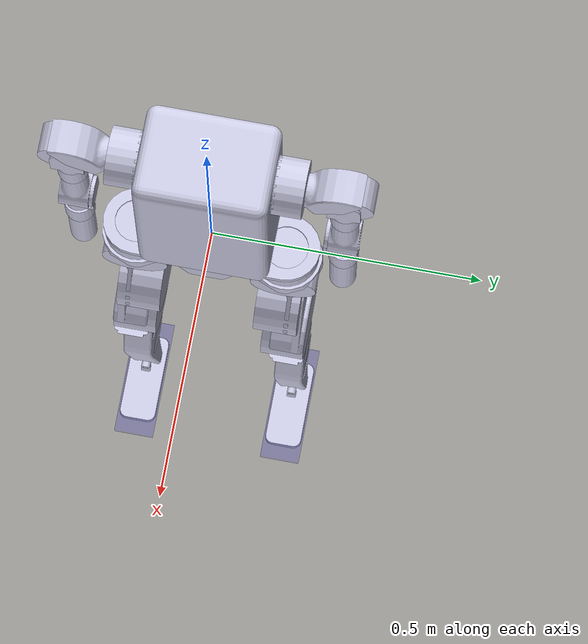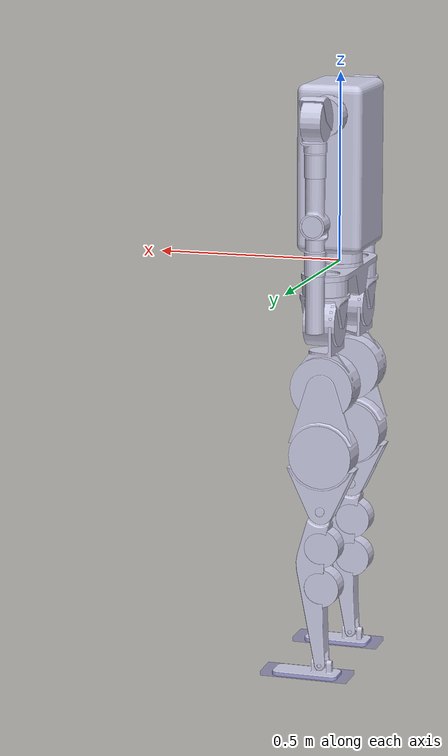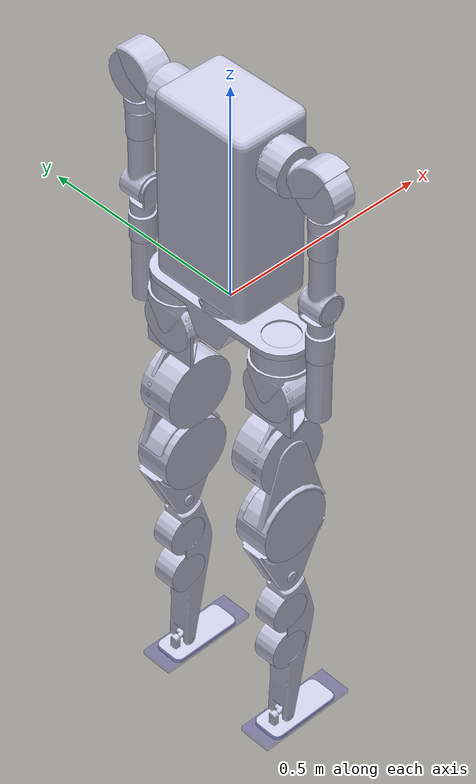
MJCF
<mujoco model="humanoid_yrp_merged">
  <compiler angle="radian" meshdir="meshes/"/>

  <asset>
    <mesh name="pelvis_link" file="pelvis_link.stl"/>
    <mesh name="left_hip_pitch_link" file="left_hip_pitch_link.stl"/>
    <mesh name="left_hip_roll_link" file="left_hip_roll_link.stl"/>
    <mesh name="left_hip_yaw_link" file="left_hip_yaw_link.stl"/>
    <mesh name="left_knee_pitch_link" file="left_knee_pitch_link.stl"/>
    <mesh name="left_ankle_pitch_link" file="left_ankle_pitch_link.stl"/>
    <mesh name="left_ankle_roll_link" file="left_ankle_roll_link.stl"/>
    <mesh name="right_hip_pitch_link" file="right_hip_pitch_link.stl"/>
    <mesh name="right_hip_roll_link" file="right_hip_roll_link.stl"/>
    <mesh name="right_hip_yaw_link" file="right_hip_yaw_link.stl"/>
    <mesh name="right_knee_pitch_link" file="right_knee_pitch_link.stl"/>
    <mesh name="right_ankle_pitch_link" file="right_ankle_pitch_link.stl"/>
    <mesh name="right_ankle_roll_link" file="right_ankle_roll_link.stl"/>
    <mesh name="torso_link" file="torso_link.stl"/>
    <mesh name="left_shoulder_pitch_link" file="left_shoulder_pitch_link.stl"/>
    <mesh name="left_shoulder_roll_link" file="left_shoulder_roll_link.stl"/>
    <mesh name="left_shoulder_yaw_link" file="left_shoulder_yaw_link.stl"/>
    <mesh name="left_elbow_pitch_link" file="left_elbow_pitch_link.stl"/>
    <mesh name="left_elbow_yaw_link" file="left_elbow_yaw_link.stl"/>
    <mesh name="right_shoulder_pitch_link" file="right_shoulder_pitch_link.stl"/>
    <mesh name="right_shoulder_roll_link" file="right_shoulder_roll_link.stl"/>
    <mesh name="right_shoulder_yaw_link" file="right_shoulder_yaw_link.stl"/>
    <mesh name="right_elbow_pitch_link" file="right_elbow_pitch_link.stl"/>
    <mesh name="right_elbow_yaw_link" file="right_elbow_yaw_link.stl"/>
  </asset>

  <worldbody>
    <body name="root">
      <inertial pos="-6.00373e-05 -8.36285e-05 -0.0261332" quat="0.707089 0.706905 -0.0124681 0.0124351" mass="6.82436" diaginertia="0.0756408 0.0753085 0.0146796"/>
      <joint name="floating_base_joint" type="free" limited="false" actuatorfrclimited="false"/>
      <geom type="mesh" contype="0" conaffinity="0" rgba="0.8 0.8 0.9 1" mesh="pelvis_link"/>
      <geom size="0.06 0.03205" pos="4.6014e-07 0.14 -0.0454909" type="cylinder" contype="0" conaffinity="0" rgba="0.8 0.8 0.9 1"/>
      <geom size="0.06 0.03205" pos="5.16968e-07 -0.14 -0.0454909" type="cylinder" contype="0" conaffinity="0" rgba="0.8 0.8 0.9 1"/>
      <geom size="0.06 0.03205" pos="5.16504e-07 -5.04132e-08 0.0250091" type="cylinder" contype="0" conaffinity="0" rgba="0.8 0.8 0.9 1"/>
      <site name="imu_mount" pos="0 0 0"/>
      <site name="torso_mount" pos="0 0 0.0475"/>
      <site name="imu_site" pos="0 0 0"/>
      <body name="left_hip_yaw_link" pos="0 0.14 -0.0635">
        <inertial pos="0 -2.31069e-06 -0.0626618" quat="1 -3.02664e-05 0 0" mass="2.78859" diaginertia="0.0064834 0.00620228 0.0048889"/>
        <joint name="left_hip_yaw_joint" pos="0 0 0" axis="0 0 1" range="-2.722 2.722" armature="0.061488" damping="0.0069" frictionloss="0.576"/>
        <geom type="mesh" contype="0" conaffinity="0" rgba="0.8 0.8 0.9 1" mesh="left_hip_yaw_link"/>
        <geom size="0.062 0.0425" pos="0 -2.95577e-06 -0.075" quat="0.70711 0 0.707103 0" type="cylinder" contype="0" conaffinity="0" rgba="0.8 0.8 0.9 1"/>
        <body name="left_hip_roll_link" pos="-0.027 0 -0.075">
          <inertial pos="0.0262551 -0.00642324 -0.167062" quat="0.704131 -0.0661226 -0.0416052 0.705759" mass="3.68168" diaginertia="0.016727 0.0125238 0.0086828"/>
          <joint name="left_hip_roll_joint" pos="0 0 0" axis="1 0 0" range="-0.5 1.047" armature="0.32256" damping="0.766" frictionloss="2.492"/>
          <geom type="mesh" contype="0" conaffinity="0" rgba="0.8 0.8 0.9 1" mesh="left_hip_roll_link"/>
          <geom size="0.085 0.0415" pos="0.0273992 -0.0085541 -0.175217" quat="0.70711 0.707103 0 0" type="cylinder" contype="0" conaffinity="0" rgba="0.8 0.8 0.9 1"/>
          <body name="left_hip_pitch_link" pos="0.0275 0.0228 -0.175">
            <inertial pos="-0.000160241 -0.0142881 -0.180496" quat="0.706764 -0.0149557 0.0149514 0.707133" mass="4.76011" diaginertia="0.0325838 0.0264769 0.0112813"/>
            <joint name="left_hip_pitch_joint" pos="0 0 0" axis="0 1 0" range="-3.1415 3.1415" armature="0.155952" damping="0.338" frictionloss="1.481"/>
            <geom type="mesh" contype="0" conaffinity="0" rgba="0.8 0.8 0.9 1" mesh="left_hip_pitch_link"/>
            <geom size="0.085 0.0415" pos="-0.000238364 -0.0184458 -0.179979" quat="0.70711 0.707103 0 0" type="cylinder" contype="0" conaffinity="0" rgba="0.8 0.8 0.9 1"/>
            <body name="left_knee_pitch_link" pos="0 -0.00999965 -0.33">
              <inertial pos="0.00791673 -3.48928e-07 -0.172865" quat="0.70701 -0.00277602 -0.0019518 0.707195" mass="3.05882" diaginertia="0.0384643 0.0371959 0.0031252"/>
              <joint name="left_knee_pitch_joint" pos="0 0 0" axis="0 1 0" range="0 2.007" armature="0.155952" damping="0.338" frictionloss="1.481"/>
              <geom type="mesh" contype="0" conaffinity="0" rgba="0.8 0.8 0.9 1" mesh="left_knee_pitch_link"/>
              <geom size="0.0525 0.027" pos="-0.00015591 0.0004457 -0.100101" quat="0.70711 0.707103 0 0" type="cylinder" contype="0" conaffinity="0" rgba="0.8 0.8 0.9 1"/>
              <geom size="0.0525 0.027" pos="-0.000319571 -0.0004464 -0.209961" quat="0.70711 0.707103 0 0" type="cylinder" contype="0" conaffinity="0" rgba="0.8 0.8 0.9 1"/>
              <body name="left_ankle_pitch_link" pos="-0.000857798 2.61427e-07 -0.424999">
                <inertial pos="1.5474e-09 -6.11443e-07 7.37765e-10" quat="0.500032 0.500032 -0.499968 0.499968" mass="0.0915496" diaginertia="2.67722e-05 1.42226e-05 1.42226e-05"/>
                <joint name="left_ankle_pitch_joint" pos="0 0 0" axis="0 1 0" range="-1.221 0.872" armature="0.043416" damping="0.028" frictionloss="0.876"/>
                <geom type="mesh" contype="0" conaffinity="0" rgba="0.8 0.8 0.9 1" mesh="left_ankle_pitch_link"/>
                <body name="left_ankle_roll_link">
                  <inertial pos="0.0388421 -6.09895e-07 -0.0295267" quat="0 0.715124 0 0.698997" mass="1.02847" diaginertia="0.00308315 0.00269298 0.000478241"/>
                  <joint name="left_ankle_roll_joint" pos="0 0 0" axis="1 0 0" range="-0.436 0.436" armature="0.043416" damping="0.028" frictionloss="0.876"/>
                  <geom type="mesh" contype="0" conaffinity="0" rgba="0.8 0.8 0.9 1" mesh="left_ankle_roll_link"/>
                  <geom name="left_foot_collision" size="0.12 0.04 0.006" pos="0.04135 0 -0.032" type="box" group="1" rgba="0 0 0.7 0.1"/>
                  <body name="left_foot" pos="0.04135 0 -0.037">
                    <inertial pos="0 0 0" mass="1e-06" diaginertia="1e-09 1e-09 1e-09"/>
                  </body>
                </body>
              </body>
            </body>
          </body>
        </body>
      </body>
      <body name="right_hip_yaw_link" pos="0 -0.14 -0.0635">
        <inertial pos="0 -2.31069e-06 -0.0626618" quat="1 -3.02664e-05 0 0" mass="2.78859" diaginertia="0.0064834 0.00620228 0.0048889"/>
        <joint name="right_hip_yaw_joint" pos="0 0 0" axis="0 0 1" range="-2.722 2.722" armature="0.061488" damping="0.0069" frictionloss="0.576"/>
        <geom type="mesh" contype="0" conaffinity="0" rgba="0.8 0.8 0.9 1" mesh="right_hip_yaw_link"/>
        <geom size="0.062 0.0425" pos="0 -2.95577e-06 -0.075" quat="0.70711 0 0.707103 0" type="cylinder" contype="0" conaffinity="0" rgba="0.8 0.8 0.9 1"/>
        <body name="right_hip_roll_link" pos="-0.027 0 -0.075">
          <inertial pos="0.0262551 0.00642324 -0.166685" quat="0.705725 -0.0418775 -0.066202 0.704142" mass="3.68168" diaginertia="0.0167042 0.0125013 0.00868293"/>
          <joint name="right_hip_roll_joint" pos="0 0 0" axis="1 0 0" range="-1.047 0.5" armature="0.32256" damping="0.766" frictionloss="2.492"/>
          <geom type="mesh" contype="0" conaffinity="0" rgba="0.8 0.8 0.9 1" mesh="right_hip_roll_link"/>
          <geom size="0.085 0.0415" pos="0.0273992 0.0085541 -0.174783" quat="0.70711 0.707103 0 0" type="cylinder" contype="0" conaffinity="0" rgba="0.8 0.8 0.9 1"/>
          <body name="right_hip_pitch_link" pos="0.0275 -0.0228 -0.175">
            <inertial pos="-9.24443e-05 0.0142882 -0.180379" quat="0.707056 0.0149129 -0.0149165 0.706843" mass="4.76011" diaginertia="0.0325842 0.0264775 0.0112815"/>
            <joint name="right_hip_pitch_joint" pos="0 0 0" axis="0 1 0" range="-3.1415 3.1415" armature="0.155952" damping="0.338" frictionloss="1.481"/>
            <geom type="mesh" contype="0" conaffinity="0" rgba="0.8 0.8 0.9 1" mesh="right_hip_pitch_link"/>
            <geom size="0.085 0.0415" pos="-0.000137514 0.0184459 -0.179804" quat="0.70711 0.707103 0 0" type="cylinder" contype="0" conaffinity="0" rgba="0.8 0.8 0.9 1"/>
            <body name="right_knee_pitch_link" pos="0 0.01 -0.33">
              <inertial pos="0.00818566 3.81348e-10 -0.172815" quat="0.707204 -0.00265843 -0.00348431 0.706996" mass="3.05882" diaginertia="0.0384988 0.0372265 0.00312924"/>
              <joint name="right_knee_pitch_joint" pos="0 0 0" axis="0 1 0" range="0 2.007" armature="0.155952" damping="0.338" frictionloss="1.481"/>
              <geom type="mesh" contype="0" conaffinity="0" rgba="0.8 0.8 0.9 1" mesh="right_knee_pitch_link"/>
              <geom size="0.0525 0.027" pos="-3.92528e-05 -0.000446 -0.0998958" quat="0.70711 0.707103 0 0" type="cylinder" contype="0" conaffinity="0" rgba="0.8 0.8 0.9 1"/>
              <geom size="0.0525 0.027" pos="-0.000101531 0.000446 -0.210046" quat="0.70711 0.707103 0 0" type="cylinder" contype="0" conaffinity="0" rgba="0.8 0.8 0.9 1"/>
              <body name="right_ankle_pitch_link" pos="0 0 -0.425">
                <inertial pos="1.5474e-09 -1.54739e-09 0" quat="0.5 0.5 -0.5 0.5" mass="0.0915496" diaginertia="2.67722e-05 1.42226e-05 1.42226e-05"/>
                <joint name="right_ankle_pitch_joint" pos="0 0 0" axis="0 1 0" range="-1.221 0.872" armature="0.043416" damping="0.028" frictionloss="0.876"/>
                <geom type="mesh" contype="0" conaffinity="0" rgba="0.8 0.8 0.9 1" mesh="right_ankle_pitch_link"/>
                <body name="right_ankle_roll_link">
                  <inertial pos="0.0388459 0 -0.0295218" quat="0 0.71508 0 0.699043" mass="1.02847" diaginertia="0.00308315 0.00269298 0.000478241"/>
                  <joint name="right_ankle_roll_joint" pos="0 0 0" axis="1 0 0" range="-0.436 0.436" armature="0.043416" damping="0.028" frictionloss="0.876"/>
                  <geom type="mesh" contype="0" conaffinity="0" rgba="0.8 0.8 0.9 1" mesh="right_ankle_roll_link"/>
                  <geom name="right_foot_collision" size="0.12 0.04 0.006" pos="0.04135 0 -0.032" type="box" group="1" rgba="0 0 0.7 0.1"/>
                  <body name="right_foot" pos="0.04135 0 -0.037">
                    <inertial pos="0 0 0" mass="1e-06" diaginertia="1e-09 1e-09 1e-09"/>
                  </body>
                </body>
              </body>
            </body>
          </body>
        </body>
      </body>
      <body name="torso_yaw_link" pos="0 0 0.0475">
        <inertial pos="0 0 0.227807" quat="1 0 0 -0.000206205" mass="15.3022" diaginertia="0.348334 0.281258 0.137515"/>
        <joint name="torso_yaw_joint" pos="0 0 0" axis="0 0 1" range="-1.5707 1.5707" armature="0.061488" damping="0.0069" frictionloss="0.576"/>
        <geom type="mesh" contype="0" conaffinity="0" rgba="0.8 0.8 0.9 1" mesh="torso_link"/>
        <geom size="0.0525 0.027" pos="0.000111292 0.147954 0.354996" quat="0.70711 0.707103 0 0" type="cylinder" contype="0" conaffinity="0" rgba="0.8 0.8 0.9 1"/>
        <geom size="0.0525 0.027" pos="-0.000111292 -0.147954 0.354996" quat="0.70711 0.707103 0 0" type="cylinder" contype="0" conaffinity="0" rgba="0.8 0.8 0.9 1"/>
        <site name="left_arm_mount" pos="0 0.176 0.355"/>
        <site name="right_arm_mount" pos="0 -0.176 0.355"/>
        <body name="torso" pos="0 0 0.355">
          <inertial pos="0 0 0" mass="1e-06" diaginertia="1e-09 1e-09 1e-09"/>
        </body>
        <body name="left_shoulder_pitch_link" pos="0 0.176 0.355">
          <inertial pos="-0.00306315 0.0620754 0.00444058" quat="0.727835 0.685332 0.0237004 0.00389183" mass="1.0821" diaginertia="0.00182356 0.00132748 0.00115062"/>
          <joint name="left_shoulder_pitch_joint" pos="0 0 0" axis="0 1 0" range="-2.618 2.007" armature="0.043416" damping="0.028" frictionloss="0.876"/>
          <geom type="mesh" contype="0" conaffinity="0" rgba="0.8 0.8 0.9 1" mesh="left_shoulder_pitch_link"/>
          <geom size="0.0525 0.027" pos="-0.003946 0.0698986 -4.59265e-05" quat="0.70711 0 0.707103 0" type="cylinder" contype="0" conaffinity="0" rgba="0.8 0.8 0.9 1"/>
          <body name="left_shoulder_roll_link" pos="0.024 0.07 0">
            <inertial pos="-0.0192802 7.42705e-09 -0.0545648" quat="0.96696 -2.1985e-07 0.254927 -8.33909e-07" mass="0.28974" diaginertia="0.000310056 0.000288331 0.000120903"/>
            <joint name="left_shoulder_roll_joint" pos="0 0 0" axis="1 0 0" range="-0.175 2.531" armature="0.043416" damping="0.028" frictionloss="0.876"/>
            <geom type="mesh" contype="0" conaffinity="0" rgba="0.8 0.8 0.9 1" mesh="left_shoulder_roll_link"/>
            <body name="left_shoulder_yaw_link" pos="-0.027 0 -0.1405">
              <inertial pos="8.58845e-07 -0.00134537 -0.0559306" quat="0.999944 -0.0105981 2.27804e-05 -7.5063e-06" mass="1.1219" diaginertia="0.00562987 0.00560549 0.000486935"/>
              <joint name="left_shoulder_yaw_joint" pos="0 0 0" axis="0 0 1" range="-2.88 2.88" armature="0.0178848" damping="0.014" frictionloss="0.23"/>
              <geom type="mesh" contype="0" conaffinity="0" rgba="0.8 0.8 0.9 1" mesh="left_shoulder_yaw_link"/>
              <geom size="0.028 0.03025" pos="5.24476e-06 -5.62893e-06 0.026002" type="cylinder" contype="0" conaffinity="0" rgba="0.8 0.8 0.9 1"/>
              <geom size="0.028 0.03025" pos="-2.68858e-06 -0.003998 -0.128007" quat="0.70711 0.707103 0 0" type="cylinder" contype="0" conaffinity="0" rgba="0.8 0.8 0.9 1"/>
              <body name="left_elbow_pitch_link" pos="0 -0.03 -0.128">
                <inertial pos="-1.67859e-06 0.0265135 -0.0778141" quat="0.995929 0.09014 2.39106e-05 -5.21924e-05" mass="0.603963" diaginertia="0.000815049 0.000801572 0.000237622"/>
                <joint name="left_elbow_pitch_joint" pos="0 0 0" axis="0 1 0" range="-2.182 0" armature="0.0178848" damping="0.014" frictionloss="0.23"/>
                <geom type="mesh" contype="0" conaffinity="0" rgba="0.8 0.8 0.9 1" mesh="left_elbow_pitch_link"/>
                <geom size="0.028 0.03025" pos="-2.68858e-06 0.0290072 -0.099498" type="cylinder" contype="0" conaffinity="0" rgba="0.8 0.8 0.9 1"/>
                <body name="left_elbow_yaw_link" pos="0 0.029 -0.1255">
                  <inertial pos="0 0 -0.0779665" mass="0.306173" diaginertia="0.000668211 0.000668211 9.56405e-05"/>
                  <joint name="left_elbow_yaw_joint" pos="0 0 0" axis="0 0 1" range="-2.356 2.356" armature="0.0178848" damping="0.014" frictionloss="0.23"/>
                  <geom type="mesh" contype="0" conaffinity="0" rgba="0.8 0.8 0.9 1" mesh="left_elbow_yaw_link"/>
                  <body name="left_end_effector" pos="0 0 -0.155">
                    <inertial pos="0 0 0" mass="1e-06" diaginertia="1e-09 1e-09 1e-09"/>
                  </body>
                </body>
              </body>
            </body>
          </body>
        </body>
        <body name="right_shoulder_pitch_link" pos="0 -0.176 0.355">
          <inertial pos="-0.00306315 -0.0622329 0.00444058" quat="0.684116 0.728978 -0.00396618 -0.0236854" mass="1.0821" diaginertia="0.00182624 0.00133024 0.00115053"/>
          <joint name="right_shoulder_pitch_joint" pos="0 0 0" axis="0 1 0" range="-2.618 2.007" armature="0.043416" damping="0.028" frictionloss="0.876"/>
          <geom type="mesh" contype="0" conaffinity="0" rgba="0.8 0.8 0.9 1" mesh="right_shoulder_pitch_link"/>
          <geom size="0.0525 0.027" pos="-0.003946 -0.0701014 -4.59265e-05" quat="0.70711 0 0.707103 0" type="cylinder" contype="0" conaffinity="0" rgba="0.8 0.8 0.9 1"/>
          <body name="right_shoulder_roll_link" pos="0.024 -0.07 0">
            <inertial pos="-0.0192802 7.42705e-09 -0.0545648" quat="0.96696 -2.1985e-07 0.254927 -8.33909e-07" mass="0.28974" diaginertia="0.000310056 0.000288331 0.000120903"/>
            <joint name="right_shoulder_roll_joint" pos="0 0 0" axis="1 0 0" range="-2.531 0.175" armature="0.043416" damping="0.028" frictionloss="0.876"/>
            <geom type="mesh" contype="0" conaffinity="0" rgba="0.8 0.8 0.9 1" mesh="right_shoulder_roll_link"/>
            <body name="right_shoulder_yaw_link" pos="-0.027 0 -0.1405">
              <inertial pos="-8.59101e-07 0.00134537 -0.0559306" quat="0.999944 0.0105981 -2.278e-05 -7.5155e-06" mass="1.1219" diaginertia="0.00562987 0.00560549 0.000486935"/>
              <joint name="right_shoulder_yaw_joint" pos="0 0 0" axis="0 0 1" range="-2.88 2.88" armature="0.0178848" damping="0.014" frictionloss="0.23"/>
              <geom type="mesh" contype="0" conaffinity="0" rgba="0.8 0.8 0.9 1" mesh="right_shoulder_yaw_link"/>
              <geom size="0.028 0.03025" pos="-5.24476e-06 5.62893e-06 0.026002" type="cylinder" contype="0" conaffinity="0" rgba="0.8 0.8 0.9 1"/>
              <geom size="0.028 0.03025" pos="2.68858e-06 0.003998 -0.128007" quat="0.70711 0.707103 0 0" type="cylinder" contype="0" conaffinity="0" rgba="0.8 0.8 0.9 1"/>
              <body name="right_elbow_pitch_link" pos="0 0.03 -0.128">
                <inertial pos="-1.67789e-06 -0.0265045 -0.0778141" quat="0.995938 -0.0900385 2.39201e-05 5.22023e-05" mass="0.603963" diaginertia="0.000815022 0.00080153 0.000237637"/>
                <joint name="right_elbow_pitch_joint" pos="0 0 0" axis="0 1 0" range="-2.182 0" armature="0.0178848" damping="0.014" frictionloss="0.23"/>
                <geom type="mesh" contype="0" conaffinity="0" rgba="0.8 0.8 0.9 1" mesh="right_elbow_pitch_link"/>
                <geom size="0.028 0.03025" pos="-2.68858e-06 -0.0289928 -0.099498" type="cylinder" contype="0" conaffinity="0" rgba="0.8 0.8 0.9 1"/>
                <body name="right_elbow_yaw_link" pos="0 -0.029 -0.1255">
                  <inertial pos="0 0 -0.0779665" mass="0.306173" diaginertia="0.000668211 0.000668211 9.56405e-05"/>
                  <joint name="right_elbow_yaw_joint" pos="0 0 0" axis="0 0 1" range="-2.356 2.356" armature="0.0178848" damping="0.014" frictionloss="0.23"/>
                  <geom type="mesh" contype="0" conaffinity="0" rgba="0.8 0.8 0.9 1" mesh="right_elbow_yaw_link"/>
                  <body name="right_end_effector" pos="0 0 -0.155">
                    <inertial pos="0 0 0" mass="1e-06" diaginertia="1e-09 1e-09 1e-09"/>
                  </body>
                </body>
              </body>
            </body>
          </body>
        </body>
      </body>
    </body>
  </worldbody>

  <actuator>
    <general name="left_hip_yaw_act" joint="left_hip_yaw_joint" ctrllimited="true" ctrlrange="-150 150"/>
    <general name="left_hip_roll_act" joint="left_hip_roll_joint" ctrllimited="true" ctrlrange="-360 360"/>
    <general name="left_hip_pitch_act" joint="left_hip_pitch_joint" ctrllimited="true" ctrlrange="-380 380"/>
    <general name="left_knee_pitch_act" joint="left_knee_pitch_joint" ctrllimited="true" ctrlrange="-380 380"/>
    <general name="left_ankle_pitch_act" joint="left_ankle_pitch_joint" ctrllimited="true" ctrlrange="-90 90"/>
    <general name="left_ankle_roll_act" joint="left_ankle_roll_joint" ctrllimited="true" ctrlrange="-90 90"/>
    <general name="right_hip_yaw_act" joint="right_hip_yaw_joint" ctrllimited="true" ctrlrange="-150 150"/>
    <general name="right_hip_roll_act" joint="right_hip_roll_joint" ctrllimited="true" ctrlrange="-360 360"/>
    <general name="right_hip_pitch_act" joint="right_hip_pitch_joint" ctrllimited="true" ctrlrange="-380 380"/>
    <general name="right_knee_pitch_act" joint="right_knee_pitch_joint" ctrllimited="true" ctrlrange="-380 380"/>
    <general name="right_ankle_pitch_act" joint="right_ankle_pitch_joint" ctrllimited="true" ctrlrange="-90 90"/>
    <general name="right_ankle_roll_act" joint="right_ankle_roll_joint" ctrllimited="true" ctrlrange="-90 90"/>
    <general name="torso_yaw_act" joint="torso_yaw_joint" ctrllimited="true" ctrlrange="-150 150"/>
    <general name="left_shoulder_pitch_act" joint="left_shoulder_pitch_joint" ctrllimited="true" ctrlrange="-90 90"/>
    <general name="left_shoulder_roll_act" joint="left_shoulder_roll_joint" ctrllimited="true" ctrlrange="-90 90"/>
    <general name="left_shoulder_yaw_act" joint="left_shoulder_yaw_joint" ctrllimited="true" ctrlrange="-36 36"/>
    <general name="left_elbow_pitch_act" joint="left_elbow_pitch_joint" ctrllimited="true" ctrlrange="-36 36"/>
    <general name="left_elbow_yaw_act" joint="left_elbow_yaw_joint" ctrllimited="true" ctrlrange="-36 36"/>
    <general name="right_shoulder_pitch_act" joint="right_shoulder_pitch_joint" ctrllimited="true" ctrlrange="-90 90"/>
    <general name="right_shoulder_roll_act" joint="right_shoulder_roll_joint" ctrllimited="true" ctrlrange="-90 90"/>
    <general name="right_shoulder_yaw_act" joint="right_shoulder_yaw_joint" ctrllimited="true" ctrlrange="-36 36"/>
    <general name="right_elbow_pitch_act" joint="right_elbow_pitch_joint" ctrllimited="true" ctrlrange="-36 36"/>
    <general name="right_elbow_yaw_act" joint="right_elbow_yaw_joint" ctrllimited="true" ctrlrange="-36 36"/>
  </actuator>

  <sensor>
    <accelerometer site="imu_site" name="accel" noise="0.9"/>
    <gyro site="imu_site" name="gyro" noise="0.026"/>
    <framequat objtype="site" objname="imu_site" name="frame_quat" noise="0.1072"/>
  </sensor>
</mujoco>
